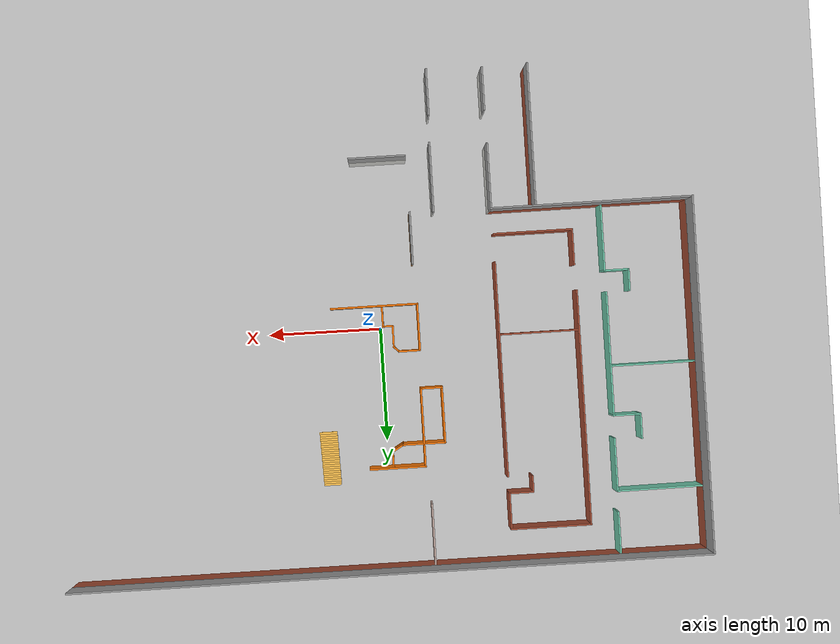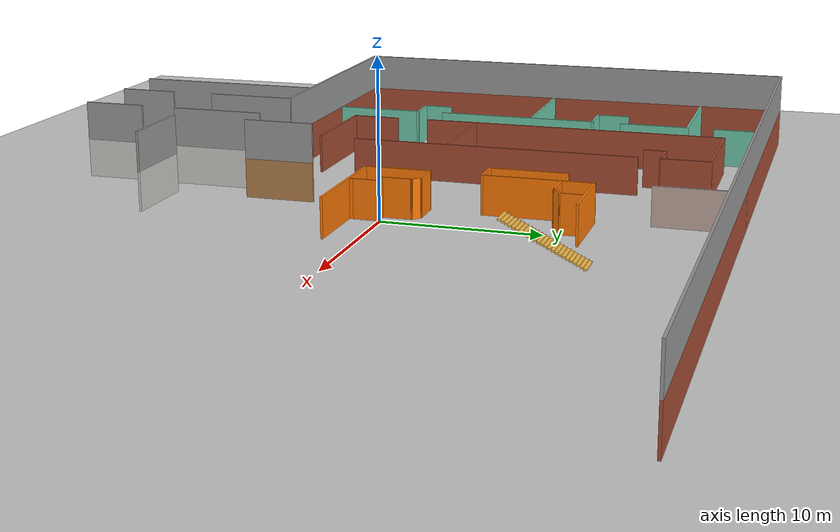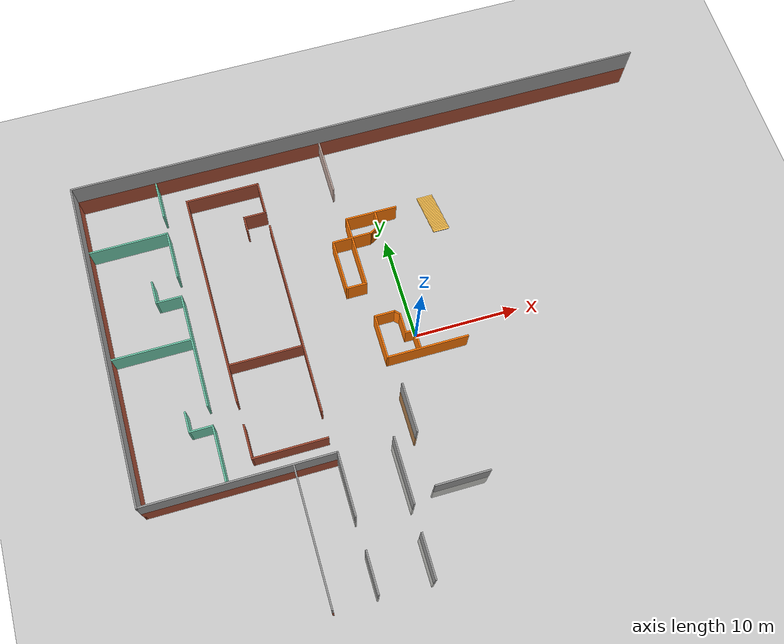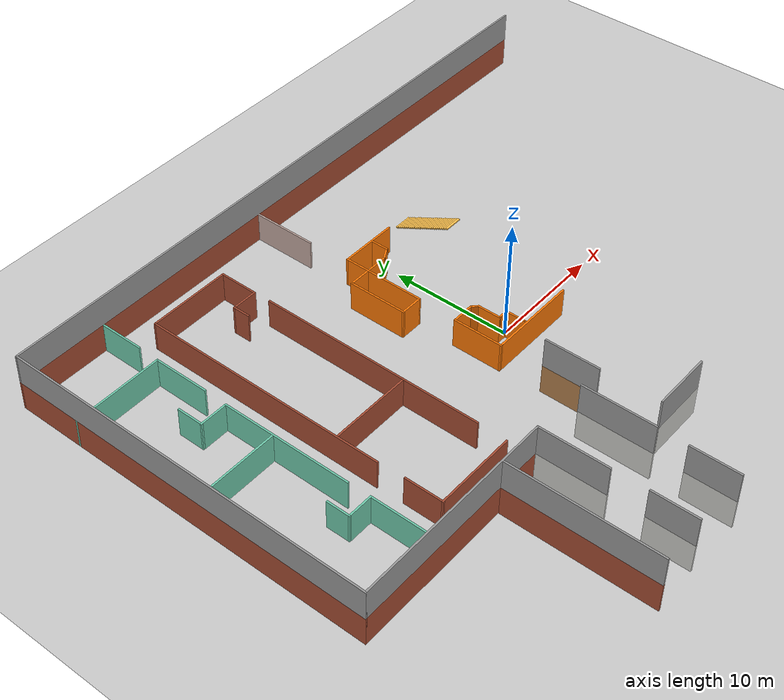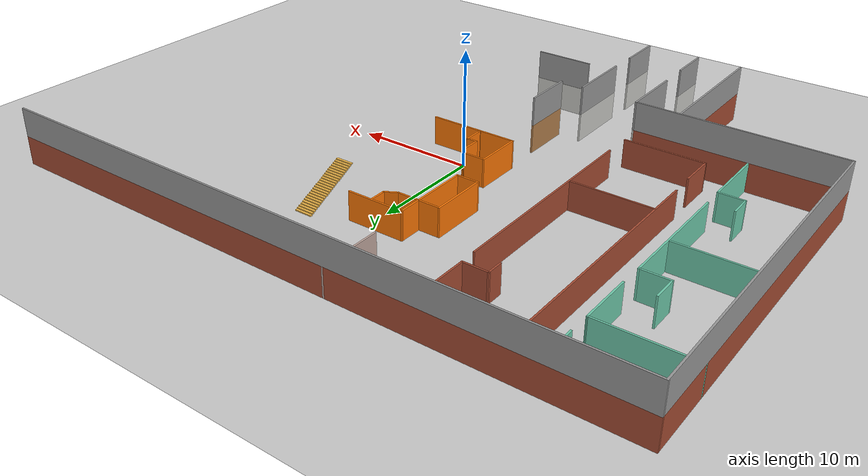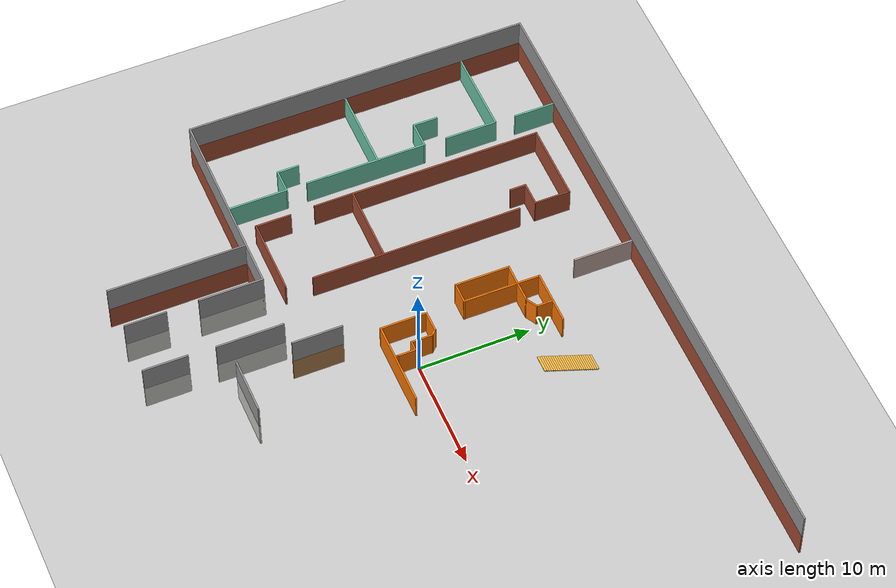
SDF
<sdf version="1.7">
 <world name="default">
  <model name="ground_plane">
   <static>1</static>
   <link name="link">
    <collision name="collision">
     <geometry><plane><normal>0 0 1</normal><size>100 100</size></plane></geometry>
     <surface><friction><ode><mu>100</mu><mu2>50</mu2></ode></friction></surface>
    </collision>
    <visual name="visual">
     <cast_shadows>0</cast_shadows>
     <geometry><plane><normal>0 0 1</normal><size>100 100</size></plane></geometry>
     <material>
      <script><uri>file://media/materials/scripts/gazebo.material</uri><name>Gazebo/Grey</name></script>
     </material>
    </visual>
   </link>
  </model>
  <model name="AKW_0">
   <pose>0.482897 -0.466564 0 0 -0 0</pose>
   <link name="Stairs_1">
    <visual name="Stairs_1_Visual_0">
     <pose>4.62116 14.1184 0.05 0 -0 0</pose>
     <geometry><box><size>1.557 0.2 0.1</size></box></geometry>
     <material>
      <script><uri>file://media/materials/scripts/gazebo.material</uri><name>Gazebo/Grey</name></script>
      <ambient>1 0.764706 0.305882 1</ambient>
     </material>
     <meta><layer>0</layer></meta>
    </visual>
    <collision name="Stairs_1_Collision_0">
     <geometry><box><size>1.557 0.2 0.1</size></box></geometry>
     <pose>4.62116 14.1184 0.05 0 -0 0</pose>
    </collision>
    <visual name="Stairs_1_Visual_1">
     <pose>4.62116 13.9184 0.15 0 -0 0</pose>
     <geometry><box><size>1.557 0.2 0.1</size></box></geometry>
     <material>
      <script><uri>file://media/materials/scripts/gazebo.material</uri><name>Gazebo/Grey</name></script>
      <ambient>1 0.764706 0.305882 1</ambient>
     </material>
     <meta><layer>0</layer></meta>
    </visual>
    <collision name="Stairs_1_Collision_1">
     <geometry><box><size>1.557 0.2 0.1</size></box></geometry>
     <pose>4.62116 13.9184 0.15 0 -0 0</pose>
    </collision>
    <visual name="Stairs_1_Visual_2">
     <pose>4.62116 13.7184 0.25 0 -0 0</pose>
     <geometry><box><size>1.557 0.2 0.1</size></box></geometry>
     <material>
      <script><uri>file://media/materials/scripts/gazebo.material</uri><name>Gazebo/Grey</name></script>
      <ambient>1 0.764706 0.305882 1</ambient>
     </material>
     <meta><layer>0</layer></meta>
    </visual>
    <collision name="Stairs_1_Collision_2">
     <geometry><box><size>1.557 0.2 0.1</size></box></geometry>
     <pose>4.62116 13.7184 0.25 0 -0 0</pose>
    </collision>
    <visual name="Stairs_1_Visual_3">
     <pose>4.62116 13.5184 0.35 0 -0 0</pose>
     <geometry><box><size>1.557 0.2 0.1</size></box></geometry>
     <material>
      <script><uri>file://media/materials/scripts/gazebo.material</uri><name>Gazebo/Grey</name></script>
      <ambient>1 0.764706 0.305882 1</ambient>
     </material>
     <meta><layer>0</layer></meta>
    </visual>
    <collision name="Stairs_1_Collision_3">
     <geometry><box><size>1.557 0.2 0.1</size></box></geometry>
     <pose>4.62116 13.5184 0.35 0 -0 0</pose>
    </collision>
    <visual name="Stairs_1_Visual_4">
     <pose>4.62116 13.3184 0.45 0 -0 0</pose>
     <geometry><box><size>1.557 0.2 0.1</size></box></geometry>
     <material>
      <script><uri>file://media/materials/scripts/gazebo.material</uri><name>Gazebo/Grey</name></script>
      <ambient>1 0.764706 0.305882 1</ambient>
     </material>
     <meta><layer>0</layer></meta>
    </visual>
    <collision name="Stairs_1_Collision_4">
     <geometry><box><size>1.557 0.2 0.1</size></box></geometry>
     <pose>4.62116 13.3184 0.45 0 -0 0</pose>
    </collision>
    <visual name="Stairs_1_Visual_5">
     <pose>4.62116 13.1184 0.55 0 -0 0</pose>
     <geometry><box><size>1.557 0.2 0.1</size></box></geometry>
     <material>
      <script><uri>file://media/materials/scripts/gazebo.material</uri><name>Gazebo/Grey</name></script>
      <ambient>1 0.764706 0.305882 1</ambient>
     </material>
     <meta><layer>0</layer></meta>
    </visual>
    <collision name="Stairs_1_Collision_5">
     <geometry><box><size>1.557 0.2 0.1</size></box></geometry>
     <pose>4.62116 13.1184 0.55 0 -0 0</pose>
    </collision>
    <visual name="Stairs_1_Visual_6">
     <pose>4.62116 12.9184 0.65 0 -0 0</pose>
     <geometry><box><size>1.557 0.2 0.1</size></box></geometry>
     <material>
      <script><uri>file://media/materials/scripts/gazebo.material</uri><name>Gazebo/Grey</name></script>
      <ambient>1 0.764706 0.305882 1</ambient>
     </material>
     <meta><layer>0</layer></meta>
    </visual>
    <collision name="Stairs_1_Collision_6">
     <geometry><box><size>1.557 0.2 0.1</size></box></geometry>
     <pose>4.62116 12.9184 0.65 0 -0 0</pose>
    </collision>
    <visual name="Stairs_1_Visual_7">
     <pose>4.62116 12.7184 0.75 0 -0 0</pose>
     <geometry><box><size>1.557 0.2 0.1</size></box></geometry>
     <material>
      <script><uri>file://media/materials/scripts/gazebo.material</uri><name>Gazebo/Grey</name></script>
      <ambient>1 0.764706 0.305882 1</ambient>
     </material>
     <meta><layer>0</layer></meta>
    </visual>
    <collision name="Stairs_1_Collision_7">
     <geometry><box><size>1.557 0.2 0.1</size></box></geometry>
     <pose>4.62116 12.7184 0.75 0 -0 0</pose>
    </collision>
    <visual name="Stairs_1_Visual_8">
     <pose>4.62116 12.5184 0.85 0 -0 0</pose>
     <geometry><box><size>1.557 0.2 0.1</size></box></geometry>
     <material>
      <script><uri>file://media/materials/scripts/gazebo.material</uri><name>Gazebo/Grey</name></script>
      <ambient>1 0.764706 0.305882 1</ambient>
     </material>
     <meta><layer>0</layer></meta>
    </visual>
    <collision name="Stairs_1_Collision_8">
     <geometry><box><size>1.557 0.2 0.1</size></box></geometry>
     <pose>4.62116 12.5184 0.85 0 -0 0</pose>
    </collision>
    <visual name="Stairs_1_Visual_9">
     <pose>4.62116 12.3184 0.95 0 -0 0</pose>
     <geometry><box><size>1.557 0.2 0.1</size></box></geometry>
     <material>
      <script><uri>file://media/materials/scripts/gazebo.material</uri><name>Gazebo/Grey</name></script>
      <ambient>1 0.764706 0.305882 1</ambient>
     </material>
     <meta><layer>0</layer></meta>
    </visual>
    <collision name="Stairs_1_Collision_9">
     <geometry><box><size>1.557 0.2 0.1</size></box></geometry>
     <pose>4.62116 12.3184 0.95 0 -0 0</pose>
    </collision>
    <visual name="Stairs_1_Visual_10">
     <pose>4.62116 12.1184 1.05 0 -0 0</pose>
     <geometry><box><size>1.557 0.2 0.1</size></box></geometry>
     <material>
      <script><uri>file://media/materials/scripts/gazebo.material</uri><name>Gazebo/Grey</name></script>
      <ambient>1 0.764706 0.305882 1</ambient>
     </material>
     <meta><layer>0</layer></meta>
    </visual>
    <collision name="Stairs_1_Collision_10">
     <geometry><box><size>1.557 0.2 0.1</size></box></geometry>
     <pose>4.62116 12.1184 1.05 0 -0 0</pose>
    </collision>
    <visual name="Stairs_1_Visual_11">
     <pose>4.62116 11.9184 1.15 0 -0 0</pose>
     <geometry><box><size>1.557 0.2 0.1</size></box></geometry>
     <material>
      <script><uri>file://media/materials/scripts/gazebo.material</uri><name>Gazebo/Grey</name></script>
      <ambient>1 0.764706 0.305882 1</ambient>
     </material>
     <meta><layer>0</layer></meta>
    </visual>
    <collision name="Stairs_1_Collision_11">
     <geometry><box><size>1.557 0.2 0.1</size></box></geometry>
     <pose>4.62116 11.9184 1.15 0 -0 0</pose>
    </collision>
    <visual name="Stairs_1_Visual_12">
     <pose>4.62116 11.7184 1.25 0 -0 0</pose>
     <geometry><box><size>1.557 0.2 0.1</size></box></geometry>
     <material>
      <script><uri>file://media/materials/scripts/gazebo.material</uri><name>Gazebo/Grey</name></script>
      <ambient>1 0.764706 0.305882 1</ambient>
     </material>
     <meta><layer>0</layer></meta>
    </visual>
    <collision name="Stairs_1_Collision_12">
     <geometry><box><size>1.557 0.2 0.1</size></box></geometry>
     <pose>4.62116 11.7184 1.25 0 -0 0</pose>
    </collision>
    <visual name="Stairs_1_Visual_13">
     <pose>4.62116 11.5184 1.35 0 -0 0</pose>
     <geometry><box><size>1.557 0.2 0.1</size></box></geometry>
     <material>
      <script><uri>file://media/materials/scripts/gazebo.material</uri><name>Gazebo/Grey</name></script>
      <ambient>1 0.764706 0.305882 1</ambient>
     </material>
     <meta><layer>0</layer></meta>
    </visual>
    <collision name="Stairs_1_Collision_13">
     <geometry><box><size>1.557 0.2 0.1</size></box></geometry>
     <pose>4.62116 11.5184 1.35 0 -0 0</pose>
    </collision>
    <visual name="Stairs_1_Visual_14">
     <pose>4.62116 11.3184 1.45 0 -0 0</pose>
     <geometry><box><size>1.557 0.2 0.1</size></box></geometry>
     <material>
      <script><uri>file://media/materials/scripts/gazebo.material</uri><name>Gazebo/Grey</name></script>
      <ambient>1 0.764706 0.305882 1</ambient>
     </material>
     <meta><layer>0</layer></meta>
    </visual>
    <collision name="Stairs_1_Collision_14">
     <geometry><box><size>1.557 0.2 0.1</size></box></geometry>
     <pose>4.62116 11.3184 1.45 0 -0 0</pose>
    </collision>
    <visual name="Stairs_1_Visual_15">
     <pose>4.62116 11.1184 1.55 0 -0 0</pose>
     <geometry><box><size>1.557 0.2 0.1</size></box></geometry>
     <material>
      <script><uri>file://media/materials/scripts/gazebo.material</uri><name>Gazebo/Grey</name></script>
      <ambient>1 0.764706 0.305882 1</ambient>
     </material>
     <meta><layer>0</layer></meta>
    </visual>
    <collision name="Stairs_1_Collision_15">
     <geometry><box><size>1.557 0.2 0.1</size></box></geometry>
     <pose>4.62116 11.1184 1.55 0 -0 0</pose>
    </collision>
    <visual name="Stairs_1_Visual_16">
     <pose>4.62116 10.9184 1.65 0 -0 0</pose>
     <geometry><box><size>1.557 0.2 0.1</size></box></geometry>
     <material>
      <script><uri>file://media/materials/scripts/gazebo.material</uri><name>Gazebo/Grey</name></script>
      <ambient>1 0.764706 0.305882 1</ambient>
     </material>
     <meta><layer>0</layer></meta>
    </visual>
    <collision name="Stairs_1_Collision_16">
     <geometry><box><size>1.557 0.2 0.1</size></box></geometry>
     <pose>4.62116 10.9184 1.65 0 -0 0</pose>
    </collision>
    <visual name="Stairs_1_Visual_17">
     <pose>4.62116 10.7184 1.75 0 -0 0</pose>
     <geometry><box><size>1.557 0.2 0.1</size></box></geometry>
     <material>
      <script><uri>file://media/materials/scripts/gazebo.material</uri><name>Gazebo/Grey</name></script>
      <ambient>1 0.764706 0.305882 1</ambient>
     </material>
     <meta><layer>0</layer></meta>
    </visual>
    <collision name="Stairs_1_Collision_17">
     <geometry><box><size>1.557 0.2 0.1</size></box></geometry>
     <pose>4.62116 10.7184 1.75 0 -0 0</pose>
    </collision>
    <visual name="Stairs_1_Visual_18">
     <pose>4.62116 10.5184 1.85 0 -0 0</pose>
     <geometry><box><size>1.557 0.2 0.1</size></box></geometry>
     <material>
      <script><uri>file://media/materials/scripts/gazebo.material</uri><name>Gazebo/Grey</name></script>
      <ambient>1 0.764706 0.305882 1</ambient>
     </material>
     <meta><layer>0</layer></meta>
    </visual>
    <collision name="Stairs_1_Collision_18">
     <geometry><box><size>1.557 0.2 0.1</size></box></geometry>
     <pose>4.62116 10.5184 1.85 0 -0 0</pose>
    </collision>
    <visual name="Stairs_1_Visual_19">
     <pose>4.62116 10.3184 1.95 0 -0 0</pose>
     <geometry><box><size>1.557 0.2 0.1</size></box></geometry>
     <material>
      <script><uri>file://media/materials/scripts/gazebo.material</uri><name>Gazebo/Grey</name></script>
      <ambient>1 0.764706 0.305882 1</ambient>
     </material>
     <meta><layer>0</layer></meta>
    </visual>
    <collision name="Stairs_1_Collision_19">
     <geometry><box><size>1.557 0.2 0.1</size></box></geometry>
     <pose>4.62116 10.3184 1.95 0 -0 0</pose>
    </collision>
    <visual name="Stairs_1_Visual_20">
     <pose>4.62116 10.1184 2.05 0 -0 0</pose>
     <geometry><box><size>1.557 0.2 0.1</size></box></geometry>
     <material>
      <script><uri>file://media/materials/scripts/gazebo.material</uri><name>Gazebo/Grey</name></script>
      <ambient>1 0.764706 0.305882 1</ambient>
     </material>
     <meta><layer>0</layer></meta>
    </visual>
    <collision name="Stairs_1_Collision_20">
     <geometry><box><size>1.557 0.2 0.1</size></box></geometry>
     <pose>4.62116 10.1184 2.05 0 -0 0</pose>
    </collision>
    <visual name="Stairs_1_Visual_21">
     <pose>4.62116 9.91837 2.15 0 -0 0</pose>
     <geometry><box><size>1.557 0.2 0.1</size></box></geometry>
     <material>
      <script><uri>file://media/materials/scripts/gazebo.material</uri><name>Gazebo/Grey</name></script>
      <ambient>1 0.764706 0.305882 1</ambient>
     </material>
     <meta><layer>0</layer></meta>
    </visual>
    <collision name="Stairs_1_Collision_21">
     <geometry><box><size>1.557 0.2 0.1</size></box></geometry>
     <pose>4.62116 9.91837 2.15 0 -0 0</pose>
    </collision>
    <visual name="Stairs_1_Visual_22">
     <pose>4.62116 9.71837 2.25 0 -0 0</pose>
     <geometry><box><size>1.557 0.2 0.1</size></box></geometry>
     <material>
      <script><uri>file://media/materials/scripts/gazebo.material</uri><name>Gazebo/Grey</name></script>
      <ambient>1 0.764706 0.305882 1</ambient>
     </material>
     <meta><layer>0</layer></meta>
    </visual>
    <collision name="Stairs_1_Collision_22">
     <geometry><box><size>1.557 0.2 0.1</size></box></geometry>
     <pose>4.62116 9.71837 2.25 0 -0 0</pose>
    </collision>
    <visual name="Stairs_1_Visual_23">
     <pose>4.62116 9.51837 2.35 0 -0 0</pose>
     <geometry><box><size>1.557 0.2 0.1</size></box></geometry>
     <material>
      <script><uri>file://media/materials/scripts/gazebo.material</uri><name>Gazebo/Grey</name></script>
      <ambient>1 0.764706 0.305882 1</ambient>
     </material>
     <meta><layer>0</layer></meta>
    </visual>
    <collision name="Stairs_1_Collision_23">
     <geometry><box><size>1.557 0.2 0.1</size></box></geometry>
     <pose>4.62116 9.51837 2.35 0 -0 0</pose>
    </collision>
    <visual name="Stairs_1_Visual_24">
     <pose>4.62116 9.31837 2.45 0 -0 0</pose>
     <geometry><box><size>1.557 0.2 0.1</size></box></geometry>
     <material>
      <script><uri>file://media/materials/scripts/gazebo.material</uri><name>Gazebo/Grey</name></script>
      <ambient>1 0.764706 0.305882 1</ambient>
     </material>
     <meta><layer>0</layer></meta>
    </visual>
    <collision name="Stairs_1_Collision_24">
     <geometry><box><size>1.557 0.2 0.1</size></box></geometry>
     <pose>4.62116 9.31837 2.45 0 -0 0</pose>
    </collision>
   </link>
   <link name="Wall_108">
    <collision name="Wall_108_Collision">
     <geometry><box><size>5 0.15 2.5</size></box></geometry>
     <pose>0 0 1.25 0 -0 0</pose>
    </collision>
    <visual name="Wall_108_Visual">
     <pose>0 0 1.25 0 -0 0</pose>
     <geometry><box><size>5 0.15 2.5</size></box></geometry>
     <material>
      <script><uri>file://media/materials/scripts/gazebo.material</uri><name>Gazebo/Grey</name></script>
      <ambient>0.996078 0.47451 0.0196078 1</ambient>
     </material>
     <meta><layer>0</layer></meta>
    </visual>
    <pose>-1.29696 12.7755 0 0 -0 3.14159</pose>
   </link>
   <link name="Wall_109">
    <collision name="Wall_109_Collision">
     <geometry><box><size>7 0.15 2.5</size></box></geometry>
     <pose>0 0 1.25 0 -0 0</pose>
    </collision>
    <visual name="Wall_109_Visual">
     <pose>0 0 1.25 0 -0 0</pose>
     <geometry><box><size>7 0.15 2.5</size></box></geometry>
     <material>
      <script><uri>file://media/materials/scripts/gazebo.material</uri><name>Gazebo/Grey</name></script>
      <ambient>0.996078 0.47451 0.0196078 1</ambient>
     </material>
     <meta><layer>0</layer></meta>
    </visual>
    <pose>-3.72196 9.35053 0 0 -0 -1.5708</pose>
   </link>
   <link name="Wall_110">
    <collision name="Wall_110_Collision">
     <geometry><box><size>2 0.15 2.5</size></box></geometry>
     <pose>0 0 1.25 0 -0 0</pose>
    </collision>
    <visual name="Wall_110_Visual">
     <pose>0 0 1.25 0 -0 0</pose>
     <geometry><box><size>2 0.15 2.5</size></box></geometry>
     <material>
      <script><uri>file://media/materials/scripts/gazebo.material</uri><name>Gazebo/Grey</name></script>
      <ambient>0.996078 0.47451 0.0196078 1</ambient>
     </material>
     <meta><layer>0</layer></meta>
    </visual>
    <pose>-4.64696 5.92553 0 0 -0 3.14159</pose>
   </link>
   <link name="Wall_111">
    <collision name="Wall_111_Collision">
     <geometry><box><size>5 0.15 2.5</size></box></geometry>
     <pose>0 0 1.25 0 -0 0</pose>
    </collision>
    <visual name="Wall_111_Visual">
     <pose>0 0 1.25 0 -0 0</pose>
     <geometry><box><size>5 0.15 2.5</size></box></geometry>
     <material>
      <script><uri>file://media/materials/scripts/gazebo.material</uri><name>Gazebo/Grey</name></script>
      <ambient>0.996078 0.47451 0.0196078 1</ambient>
     </material>
     <meta><layer>0</layer></meta>
    </visual>
    <pose>-5.57196 8.35053 0 0 -0 1.5708</pose>
   </link>
   <link name="Wall_112">
    <collision name="Wall_112_Collision">
     <geometry><box><size>2 0.15 2.5</size></box></geometry>
     <pose>0 0 1.25 0 -0 0</pose>
    </collision>
    <visual name="Wall_112_Visual">
     <pose>0 0 1.25 0 -0 0</pose>
     <geometry><box><size>2 0.15 2.5</size></box></geometry>
     <material>
      <script><uri>file://media/materials/scripts/gazebo.material</uri><name>Gazebo/Grey</name></script>
      <ambient>0.996078 0.47451 0.0196078 1</ambient>
     </material>
     <meta><layer>0</layer></meta>
    </visual>
    <pose>-4.64696 10.7755 0 0 -0 0</pose>
   </link>
   <link name="Wall_114">
    <collision name="Wall_114_Collision">
     <geometry><box><size>2 0.15 2.5</size></box></geometry>
     <pose>0 0 1.25 0 -0 0</pose>
    </collision>
    <visual name="Wall_114_Visual">
     <pose>0 0 1.25 0 -0 0</pose>
     <geometry><box><size>2 0.15 2.5</size></box></geometry>
     <material>
      <script><uri>file://media/materials/scripts/gazebo.material</uri><name>Gazebo/Grey</name></script>
      <ambient>0.996078 0.47451 0.0196078 1</ambient>
     </material>
     <meta><layer>0</layer></meta>
    </visual>
    <pose>-2.79696 10.7755 0 0 -0 0</pose>
   </link>
   <link name="Wall_115">
    <collision name="Wall_115_Collision">
     <geometry><box><size>1.25 0.15 2.5</size></box></geometry>
     <pose>0 0 1.25 0 -0 0</pose>
    </collision>
    <visual name="Wall_115_Visual">
     <pose>0 0 1.25 0 -0 0</pose>
     <geometry><box><size>1.25 0.15 2.5</size></box></geometry>
     <material>
      <script><uri>file://media/materials/scripts/gazebo.material</uri><name>Gazebo/Grey</name></script>
      <ambient>0.996078 0.47451 0.0196078 1</ambient>
     </material>
     <meta><layer>0</layer></meta>
    </visual>
    <pose>-1.39565 11.0505 0 0 -0 0.523599</pose>
   </link>
   <link name="Wall_116">
    <collision name="Wall_116_Collision">
     <geometry><box><size>1.5 0.15 2.5</size></box></geometry>
     <pose>0 0 1.25 0 -0 0</pose>
    </collision>
    <visual name="Wall_116_Visual">
     <pose>0 0 1.25 0 -0 0</pose>
     <geometry><box><size>1.5 0.15 2.5</size></box></geometry>
     <material>
      <script><uri>file://media/materials/scripts/gazebo.material</uri><name>Gazebo/Grey</name></script>
      <ambient>0.996078 0.47451 0.0196078 1</ambient>
     </material>
     <meta><layer>0</layer></meta>
    </visual>
    <pose>-0.919332 12.0005 0 0 -0 1.5708</pose>
   </link>
   <link name="Wall_119">
    <collision name="Wall_119_Collision">
     <geometry><box><size>7.75 0.15 2.5</size></box></geometry>
     <pose>0 0 1.25 0 -0 0</pose>
    </collision>
    <visual name="Wall_119_Visual">
     <pose>0 0 1.25 0 -0 0</pose>
     <geometry><box><size>7.75 0.15 2.5</size></box></geometry>
     <material>
      <script><uri>file://media/materials/scripts/gazebo.material</uri><name>Gazebo/Grey</name></script>
      <ambient>0.996078 0.47451 0.0196078 1</ambient>
     </material>
     <meta><layer>0</layer></meta>
    </visual>
    <pose>-0.053314 -1.5472 0 0 -0 3.14159</pose>
   </link>
   <link name="Wall_12">
    <collision name="Wall_12_Collision">
     <geometry><box><size>19 0.15 2.5</size></box></geometry>
     <pose>0 0 1.25 0 -0 0</pose>
    </collision>
    <visual name="Wall_12_Visual">
     <pose>0 0 1.25 0 -0 0</pose>
     <geometry><box><size>19 0.15 2.5</size></box></geometry>
     <material>
      <script><uri>file://media/materials/scripts/gazebo.material</uri><name>Gazebo/Bricks</name></script>
      <ambient>1 1 1 1</ambient>
     </material>
     <meta><layer>0</layer></meta>
    </visual>
    <pose>-10.8959 4.66757 0 0 -0 1.5708</pose>
   </link>
   <link name="Wall_120">
    <collision name="Wall_120_Collision">
     <geometry><box><size>4.25 0.15 2.5</size></box></geometry>
     <pose>0 0 1.25 0 -0 0</pose>
    </collision>
    <visual name="Wall_120_Visual">
     <pose>0 0 1.25 0 -0 0</pose>
     <geometry><box><size>4.25 0.15 2.5</size></box></geometry>
     <material>
      <script><uri>file://media/materials/scripts/gazebo.material</uri><name>Gazebo/Grey</name></script>
      <ambient>0.996078 0.47451 0.0196078 1</ambient>
     </material>
     <meta><layer>0</layer></meta>
    </visual>
    <pose>-3.85331 0.502804 0 0 -0 1.5708</pose>
   </link>
   <link name="Wall_121">
    <collision name="Wall_121_Collision">
     <geometry><box><size>2 0.15 2.5</size></box></geometry>
     <pose>0 0 1.25 0 -0 0</pose>
    </collision>
    <visual name="Wall_121_Visual">
     <pose>0 0 1.25 0 -0 0</pose>
     <geometry><box><size>2 0.15 2.5</size></box></geometry>
     <material>
      <script><uri>file://media/materials/scripts/gazebo.material</uri><name>Gazebo/Grey</name></script>
      <ambient>0.996078 0.47451 0.0196078 1</ambient>
     </material>
     <meta><layer>0</layer></meta>
    </visual>
    <pose>-2.92831 2.5528 0 0 -0 0</pose>
   </link>
   <link name="Wall_122">
    <collision name="Wall_122_Collision">
     <geometry><box><size>0.75 0.15 2.5</size></box></geometry>
     <pose>0 0 1.25 0 -0 0</pose>
    </collision>
    <visual name="Wall_122_Visual">
     <pose>0 0 1.25 0 -0 0</pose>
     <geometry><box><size>0.75 0.15 2.5</size></box></geometry>
     <material>
      <script><uri>file://media/materials/scripts/gazebo.material</uri><name>Gazebo/Grey</name></script>
      <ambient>0.996078 0.47451 0.0196078 1</ambient>
     </material>
     <meta><layer>0</layer></meta>
    </visual>
    <pose>-1.79118 2.34067 0 0 -0 -0.785398</pose>
   </link>
   <link name="Wall_123">
    <collision name="Wall_123_Collision">
     <geometry><box><size>2 0.15 2.5</size></box></geometry>
     <pose>0 0 1.25 0 -0 0</pose>
    </collision>
    <visual name="Wall_123_Visual">
     <pose>0 0 1.25 0 -0 0</pose>
     <geometry><box><size>2 0.15 2.5</size></box></geometry>
     <material>
      <script><uri>file://media/materials/scripts/gazebo.material</uri><name>Gazebo/Grey</name></script>
      <ambient>0.996078 0.47451 0.0196078 1</ambient>
     </material>
     <meta><layer>0</layer></meta>
    </visual>
    <pose>-1.57905 1.20354 0 0 -0 -1.5708</pose>
   </link>
   <link name="Wall_124">
    <collision name="Wall_124_Collision">
     <geometry><box><size>1 0.15 2.5</size></box></geometry>
     <pose>0 0 1.25 0 -0 0</pose>
    </collision>
    <visual name="Wall_124_Visual">
     <pose>0 0 1.25 0 -0 0</pose>
     <geometry><box><size>1 0.15 2.5</size></box></geometry>
     <material>
      <script><uri>file://media/materials/scripts/gazebo.material</uri><name>Gazebo/Grey</name></script>
      <ambient>0.996078 0.47451 0.0196078 1</ambient>
     </material>
     <meta><layer>0</layer></meta>
    </visual>
    <pose>-1.15405 0.27854 0 0 -0 0</pose>
   </link>
   <link name="Wall_125">
    <collision name="Wall_125_Collision">
     <geometry><box><size>1.75 0.15 2.5</size></box></geometry>
     <pose>0 0 1.25 0 -0 0</pose>
    </collision>
    <visual name="Wall_125_Visual">
     <pose>0 0 1.25 0 -0 0</pose>
     <geometry><box><size>1.75 0.15 2.5</size></box></geometry>
     <material>
      <script><uri>file://media/materials/scripts/gazebo.material</uri><name>Gazebo/Grey</name></script>
      <ambient>0.996078 0.47451 0.0196078 1</ambient>
     </material>
     <meta><layer>0</layer></meta>
    </visual>
    <pose>-0.729049 -0.52146 0 0 -0 -1.5708</pose>
   </link>
   <link name="Wall_126">
    <collision name="Wall_126_Collision">
     <geometry><box><size>0.25 0.15 2.5</size></box></geometry>
     <pose>0 0 1.25 0 -0 0</pose>
    </collision>
    <visual name="Wall_126_Visual">
     <pose>0 0 1.25 0 -0 0</pose>
     <geometry><box><size>0.25 0.15 2.5</size></box></geometry>
     <material>
      <script><uri>file://media/materials/scripts/gazebo.material</uri><name>Gazebo/Grey</name></script>
      <ambient>0.996078 0.47451 0.0196078 1</ambient>
     </material>
     <meta><layer>0</layer></meta>
    </visual>
    <pose>-0.729049 -1.37146 0 0 -0 -1.5708</pose>
   </link>
   <link name="Wall_14">
    <collision name="Wall_14_Collision">
     <geometry><box><size>7 0.15 2.5</size></box></geometry>
     <pose>0 0 1.25 0 -0 0</pose>
    </collision>
    <visual name="Wall_14_Visual">
     <pose>0 0 1.25 0 -0 0</pose>
     <geometry><box><size>7 0.15 2.5</size></box></geometry>
     <material>
      <script><uri>file://media/materials/scripts/gazebo.material</uri><name>Gazebo/Bricks</name></script>
      <ambient>1 1 1 1</ambient>
     </material>
     <meta><layer>0</layer></meta>
    </visual>
    <pose>-14.4147 -7.24339 0 0 -0 3.14159</pose>
   </link>
   <link name="Wall_15">
    <collision name="Wall_15_Collision">
     <geometry><box><size>3.25 0.15 2.5</size></box></geometry>
     <pose>0 0 1.25 0 -0 0</pose>
    </collision>
    <visual name="Wall_15_Visual">
     <pose>0 0 1.25 0 -0 0</pose>
     <geometry><box><size>3.25 0.15 2.5</size></box></geometry>
     <material>
      <script><uri>file://media/materials/scripts/gazebo.material</uri><name>Gazebo/Bricks</name></script>
      <ambient>1 1 1 1</ambient>
     </material>
     <meta><layer>0</layer></meta>
    </visual>
    <pose>-17.8397 -5.69339 0 0 -0 1.5708</pose>
   </link>
   <link name="Wall_17">
    <collision name="Wall_17_Collision">
     <geometry><box><size>20.75 0.15 2.5</size></box></geometry>
     <pose>0 0 1.25 0 -0 0</pose>
    </collision>
    <visual name="Wall_17_Visual">
     <pose>0 0 1.25 0 -0 0</pose>
     <geometry><box><size>20.75 0.15 2.5</size></box></geometry>
     <material>
      <script><uri>file://media/materials/scripts/gazebo.material</uri><name>Gazebo/Bricks</name></script>
      <ambient>1 1 1 1</ambient>
     </material>
     <meta><layer>0</layer></meta>
    </visual>
    <pose>-17.9316 8.45068 0 0 -0 1.5708</pose>
   </link>
   <link name="Wall_18">
    <collision name="Wall_18_Collision">
     <geometry><box><size>7.13756 0.15 2.5</size></box></geometry>
     <pose>0 0 1.25 0 -0 0</pose>
    </collision>
    <visual name="Wall_18_Visual">
     <pose>0 0 1.25 0 -0 0</pose>
     <geometry><box><size>7.13756 0.15 2.5</size></box></geometry>
     <material>
      <script><uri>file://media/materials/scripts/gazebo.material</uri><name>Gazebo/Bricks</name></script>
      <ambient>1 1 1 1</ambient>
     </material>
     <meta><layer>0</layer></meta>
    </visual>
    <pose>-14.4379 18.7507 0 0 -0 0</pose>
   </link>
   <link name="Wall_19">
    <collision name="Wall_19_Collision">
     <geometry><box><size>3.2973 0.15 2.5</size></box></geometry>
     <pose>0 0 1.25 0 -0 0</pose>
    </collision>
    <visual name="Wall_19_Visual">
     <pose>0 0 1.25 0 -0 0</pose>
     <geometry><box><size>3.2973 0.15 2.5</size></box></geometry>
     <material>
      <script><uri>file://media/materials/scripts/gazebo.material</uri><name>Gazebo/Bricks</name></script>
      <ambient>1 1 1 1</ambient>
     </material>
     <meta><layer>0</layer></meta>
    </visual>
    <pose>-10.9368 17.177 0 0 -0 -1.57268</pose>
   </link>
   <link name="Wall_2">
    <collision name="Wall_2_Collision">
     <geometry><box><size>56 0.15 2.5</size></box></geometry>
     <pose>0 0 1.25 0 -0 0</pose>
    </collision>
    <visual name="Wall_2_Visual">
     <pose>0 0 1.25 0 -0 0</pose>
     <geometry><box><size>56 0.15 2.5</size></box></geometry>
     <material>
      <script><uri>file://media/materials/scripts/gazebo.material</uri><name>Gazebo/Bricks</name></script>
      <ambient>1 1 1 1</ambient>
     </material>
     <meta><layer>0</layer></meta>
    </visual>
    <pose>-0.068349 21.5525 0 0 -0 3.14159</pose>
   </link>
   <link name="Wall_21">
    <collision name="Wall_21_Collision">
     <geometry><box><size>7 0.15 2.5</size></box></geometry>
     <pose>0 0 1.25 0 -0 0</pose>
    </collision>
    <visual name="Wall_21_Visual">
     <pose>0 0 1.25 0 -0 0</pose>
     <geometry><box><size>7 0.15 2.5</size></box></geometry>
     <material>
      <script><uri>file://media/materials/scripts/gazebo.material</uri><name>Gazebo/Bricks</name></script>
      <ambient>1 1 1 1</ambient>
     </material>
     <meta><layer>0</layer></meta>
    </visual>
    <pose>-14.4748 1.61674 0 0 -0 0</pose>
   </link>
   <link name="Wall_225">
    <collision name="Wall_225_Collision">
     <geometry><box><size>56 0.15 2.5</size></box></geometry>
     <pose>0 0 1.25 0 -0 0</pose>
    </collision>
    <visual name="Wall_225_Visual">
     <pose>0 0 1.25 0 -0 0</pose>
     <geometry><box><size>56 0.15 2.5</size></box></geometry>
     <material>
      <script><uri>file://media/materials/scripts/gazebo.material</uri><name>Gazebo/Grey</name></script>
      <ambient>1 1 1 1</ambient>
     </material>
     <meta><layer>1</layer></meta>
    </visual>
    <pose>-0.068349 21.5525 2.5 0 -0 3.14159</pose>
   </link>
   <link name="Wall_226">
    <collision name="Wall_226_Collision">
     <geometry><box><size>31 0.15 2.5</size></box></geometry>
     <pose>0 0 1.25 0 -0 0</pose>
    </collision>
    <visual name="Wall_226_Visual">
     <pose>0 0 1.25 0 -0 0</pose>
     <geometry><box><size>31 0.15 2.5</size></box></geometry>
     <material>
      <script><uri>file://media/materials/scripts/gazebo.material</uri><name>Gazebo/Grey</name></script>
      <ambient>1 1 1 1</ambient>
     </material>
     <meta><layer>1</layer></meta>
    </visual>
    <pose>-27.9933 6.1275 2.5 0 -0 -1.5708</pose>
   </link>
   <link name="Wall_227">
    <collision name="Wall_227_Collision">
     <geometry><box><size>17.5 0.15 2.5</size></box></geometry>
     <pose>0 0 1.25 0 -0 0</pose>
    </collision>
    <visual name="Wall_227_Visual">
     <pose>0 0 1.25 0 -0 0</pose>
     <geometry><box><size>17.5 0.15 2.5</size></box></geometry>
     <material>
      <script><uri>file://media/materials/scripts/gazebo.material</uri><name>Gazebo/Grey</name></script>
      <ambient>1 1 1 1</ambient>
     </material>
     <meta><layer>1</layer></meta>
    </visual>
    <pose>-19.3183 -9.2975 2.5 0 -0 0</pose>
   </link>
   <link name="Wall_228">
    <collision name="Wall_228_Collision">
     <geometry><box><size>5.75 0.15 2.5</size></box></geometry>
     <pose>0 0 1.25 0 -0 0</pose>
    </collision>
    <visual name="Wall_228_Visual">
     <pose>0 0 1.25 0 -0 0</pose>
     <geometry><box><size>5.75 0.15 2.5</size></box></geometry>
     <material>
      <script><uri>file://media/materials/scripts/gazebo.material</uri><name>Gazebo/Grey</name></script>
      <ambient>1 1 1 1</ambient>
     </material>
     <meta><layer>1</layer></meta>
    </visual>
    <pose>-10.6433 -12.0975 2.5 0 -0 -1.5708</pose>
   </link>
   <link name="Wall_229">
    <collision name="Wall_229_Collision">
     <geometry><box><size>12.25 0.15 2.5</size></box></geometry>
     <pose>0 0 1.25 0 -0 0</pose>
    </collision>
    <visual name="Wall_229_Visual">
     <pose>0 0 1.25 0 -0 0</pose>
     <geometry><box><size>12.25 0.15 2.5</size></box></geometry>
     <material>
      <script><uri>file://media/materials/scripts/gazebo.material</uri><name>Gazebo/Grey</name></script>
      <ambient>1 1 1 1</ambient>
     </material>
     <meta><layer>1</layer></meta>
    </visual>
    <pose>-14.4933 -15.4975 2.5 0 -0 -1.5708</pose>
   </link>
   <link name="Wall_23">
    <collision name="Wall_23_Collision">
     <geometry><box><size>2.25 0.15 2.5</size></box></geometry>
     <pose>0 0 1.25 0 -0 0</pose>
    </collision>
    <visual name="Wall_23_Visual">
     <pose>0 0 1.25 0 -0 0</pose>
     <geometry><box><size>2.25 0.15 2.5</size></box></geometry>
     <material>
      <script><uri>file://media/materials/scripts/gazebo.material</uri><name>Gazebo/Bricks</name></script>
      <ambient>1 1 1 1</ambient>
     </material>
     <meta><layer>0</layer></meta>
    </visual>
    <pose>-11.9898 15.5857 0 0 -0 0</pose>
   </link>
   <link name="Wall_25">
    <collision name="Wall_25_Collision">
     <geometry><box><size>1.5 0.15 2.5</size></box></geometry>
     <pose>0 0 1.25 0 -0 0</pose>
    </collision>
    <visual name="Wall_25_Visual">
     <pose>0 0 1.25 0 -0 0</pose>
     <geometry><box><size>1.5 0.15 2.5</size></box></geometry>
     <material>
      <script><uri>file://media/materials/scripts/gazebo.material</uri><name>Gazebo/Bricks</name></script>
      <ambient>1 1 1 1</ambient>
     </material>
     <meta><layer>0</layer></meta>
    </visual>
    <pose>-13.0398 14.9107 0 0 -0 -1.5708</pose>
   </link>
   <link name="Wall_255">
    <collision name="Wall_255_Collision">
     <geometry><box><size>3.75 0.15 2.5</size></box></geometry>
     <pose>0 0 1.25 0 -0 0</pose>
    </collision>
    <visual name="Wall_255_Visual">
     <pose>0 0 1.25 0 -0 0</pose>
     <geometry><box><size>3.75 0.15 2.5</size></box></geometry>
     <material>
      <script><uri>file://media/materials/scripts/gazebo.material</uri><name>Gazebo/Grey</name></script>
      <ambient>1 1 1 1</ambient>
     </material>
     <meta><layer>1</layer></meta>
    </visual>
    <pose>-10.5861 -19.6441 2.5 0 -0 -1.5708</pose>
   </link>
   <link name="Wall_256">
    <collision name="Wall_256_Collision">
     <geometry><box><size>6 0.15 2.5</size></box></geometry>
     <pose>0 0 1.25 0 -0 0</pose>
    </collision>
    <visual name="Wall_256_Visual">
     <pose>0 0 1.25 0 -0 0</pose>
     <geometry><box><size>6 0.15 2.5</size></box></geometry>
     <material>
      <script><uri>file://media/materials/scripts/gazebo.material</uri><name>Gazebo/Grey</name></script>
      <ambient>1 1 1 1</ambient>
     </material>
     <meta><layer>1</layer></meta>
    </visual>
    <pose>-5.68364 -12.2987 2.5 0 -0 -1.5708</pose>
   </link>
   <link name="Wall_257">
    <collision name="Wall_257_Collision">
     <geometry><box><size>4 0.15 2.5</size></box></geometry>
     <pose>0 0 1.25 0 -0 0</pose>
    </collision>
    <visual name="Wall_257_Visual">
     <pose>0 0 1.25 0 -0 0</pose>
     <geometry><box><size>4 0.15 2.5</size></box></geometry>
     <material>
      <script><uri>file://media/materials/scripts/gazebo.material</uri><name>Gazebo/Grey</name></script>
      <ambient>1 1 1 1</ambient>
     </material>
     <meta><layer>1</layer></meta>
    </visual>
    <pose>-5.78151 -19.6583 2.5 0 -0 -1.5708</pose>
   </link>
   <link name="Wall_258">
    <collision name="Wall_258_Collision">
     <geometry><box><size>5 0.15 2.5</size></box></geometry>
     <pose>0 0 1.25 0 -0 0</pose>
    </collision>
    <visual name="Wall_258_Visual">
     <pose>0 0 1.25 0 -0 0</pose>
     <geometry><box><size>5 0.15 2.5</size></box></geometry>
     <material>
      <script><uri>file://media/materials/scripts/gazebo.material</uri><name>Gazebo/Grey</name></script>
      <ambient>1 1 1 1</ambient>
     </material>
     <meta><layer>1</layer></meta>
    </visual>
    <pose>-1.09055 -14.2885 2.5 0 -0 0</pose>
   </link>
   <link name="Wall_27">
    <collision name="Wall_27_Collision">
     <geometry><box><size>6 0.15 2.5</size></box></geometry>
     <pose>0 0 1.25 0 -0 0</pose>
    </collision>
    <visual name="Wall_27_Visual">
     <pose>0 0 1.25 0 -0 0</pose>
     <geometry><box><size>6 0.15 2.5</size></box></geometry>
     <material>
      <script><uri>file://media/materials/scripts/gazebo.material</uri><name>Gazebo/Grey</name></script>
      <ambient>0.435294 0.796078 0.67451 1</ambient>
     </material>
     <meta><layer>0</layer></meta>
    </visual>
    <pose>-20.4803 -6.36244 0 0 -0 1.5708</pose>
   </link>
   <link name="Wall_274">
    <collision name="Wall_274_Collision">
     <geometry><box><size>4.5 0.15 2.5</size></box></geometry>
     <pose>0 0 1.25 0 -0 0</pose>
    </collision>
    <visual name="Wall_274_Visual">
     <pose>0 0 1.25 0 -0 0</pose>
     <geometry><box><size>4.5 0.15 2.5</size></box></geometry>
     <material>
      <script><uri>file://media/materials/scripts/gazebo.material</uri><name>Gazebo/Grey</name></script>
      <ambient>1 1 1 1</ambient>
     </material>
     <meta><layer>1</layer></meta>
    </visual>
    <pose>-3.62897 -7.20089 2.5 0 -0 1.5708</pose>
   </link>
   <link name="Wall_28">
    <collision name="Wall_28_Collision">
     <geometry><box><size>2.25 0.15 2.5</size></box></geometry>
     <pose>0 0 1.25 0 -0 0</pose>
    </collision>
    <visual name="Wall_28_Visual">
     <pose>0 0 1.25 0 -0 0</pose>
     <geometry><box><size>2.25 0.15 2.5</size></box></geometry>
     <material>
      <script><uri>file://media/materials/scripts/gazebo.material</uri><name>Gazebo/Grey</name></script>
      <ambient>0.435294 0.796078 0.67451 1</ambient>
     </material>
     <meta><layer>0</layer></meta>
    </visual>
    <pose>-21.5303 -3.43744 0 0 -0 3.14159</pose>
   </link>
   <link name="Wall_29">
    <collision name="Wall_29_Collision">
     <geometry><box><size>2 0.15 2.5</size></box></geometry>
     <pose>0 0 1.25 0 -0 0</pose>
    </collision>
    <visual name="Wall_29_Visual">
     <pose>0 0 1.25 0 -0 0</pose>
     <geometry><box><size>2 0.15 2.5</size></box></geometry>
     <material>
      <script><uri>file://media/materials/scripts/gazebo.material</uri><name>Gazebo/Grey</name></script>
      <ambient>0.435294 0.796078 0.67451 1</ambient>
     </material>
     <meta><layer>0</layer></meta>
    </visual>
    <pose>-22.5803 -2.51244 0 0 -0 1.5708</pose>
   </link>
   <link name="Wall_3">
    <collision name="Wall_3_Collision">
     <geometry><box><size>31 0.15 2.5</size></box></geometry>
     <pose>0 0 1.25 0 -0 0</pose>
    </collision>
    <visual name="Wall_3_Visual">
     <pose>0 0 1.25 0 -0 0</pose>
     <geometry><box><size>31 0.15 2.5</size></box></geometry>
     <material>
      <script><uri>file://media/materials/scripts/gazebo.material</uri><name>Gazebo/Bricks</name></script>
      <ambient>1 1 1 1</ambient>
     </material>
     <meta><layer>0</layer></meta>
    </visual>
    <pose>-27.9933 6.1275 0 0 -0 -1.5708</pose>
   </link>
   <link name="Wall_31">
    <collision name="Wall_31_Collision">
     <geometry><box><size>11 0.15 2.5</size></box></geometry>
     <pose>0 0 1.25 0 -0 0</pose>
    </collision>
    <visual name="Wall_31_Visual">
     <pose>0 0 1.25 0 -0 0</pose>
     <geometry><box><size>11 0.15 2.5</size></box></geometry>
     <material>
      <script><uri>file://media/materials/scripts/gazebo.material</uri><name>Gazebo/Grey</name></script>
      <ambient>0.435294 0.796078 0.67451 1</ambient>
     </material>
     <meta><layer>0</layer></meta>
    </visual>
    <pose>-20.5119 3.90334 0 0 -0 1.5708</pose>
   </link>
   <link name="Wall_32">
    <collision name="Wall_32_Collision">
     <geometry><box><size>2.5 0.15 2.5</size></box></geometry>
     <pose>0 0 1.25 0 -0 0</pose>
    </collision>
    <visual name="Wall_32_Visual">
     <pose>0 0 1.25 0 -0 0</pose>
     <geometry><box><size>2.5 0.15 2.5</size></box></geometry>
     <material>
      <script><uri>file://media/materials/scripts/gazebo.material</uri><name>Gazebo/Grey</name></script>
      <ambient>0.435294 0.796078 0.67451 1</ambient>
     </material>
     <meta><layer>0</layer></meta>
    </visual>
    <pose>-21.6869 9.32834 0 0 -0 3.14159</pose>
   </link>
   <link name="Wall_33">
    <collision name="Wall_33_Collision">
     <geometry><box><size>2.25 0.15 2.5</size></box></geometry>
     <pose>0 0 1.25 0 -0 0</pose>
    </collision>
    <visual name="Wall_33_Visual">
     <pose>0 0 1.25 0 -0 0</pose>
     <geometry><box><size>2.25 0.15 2.5</size></box></geometry>
     <material>
      <script><uri>file://media/materials/scripts/gazebo.material</uri><name>Gazebo/Grey</name></script>
      <ambient>0.435294 0.796078 0.67451 1</ambient>
     </material>
     <meta><layer>0</layer></meta>
    </visual>
    <pose>-22.8619 10.3783 0 0 -0 1.5708</pose>
   </link>
   <link name="Wall_35">
    <collision name="Wall_35_Collision">
     <geometry><box><size>7.66367 0.15 2.5</size></box></geometry>
     <pose>0 0 1.25 0 -0 0</pose>
    </collision>
    <visual name="Wall_35_Visual">
     <pose>0 0 1.25 0 -0 0</pose>
     <geometry><box><size>7.66367 0.15 2.5</size></box></geometry>
     <material>
      <script><uri>file://media/materials/scripts/gazebo.material</uri><name>Gazebo/Grey</name></script>
      <ambient>0.435294 0.796078 0.67451 1</ambient>
     </material>
     <meta><layer>0</layer></meta>
    </visual>
    <pose>-24.2377 15.9583 0 0 -0 0.005442</pose>
   </link>
   <link name="Wall_36">
    <collision name="Wall_36_Collision">
     <geometry><box><size>4.75 0.15 2.5</size></box></geometry>
     <pose>0 0 1.25 0 -0 0</pose>
    </collision>
    <visual name="Wall_36_Visual">
     <pose>0 0 1.25 0 -0 0</pose>
     <geometry><box><size>4.75 0.15 2.5</size></box></geometry>
     <material>
      <script><uri>file://media/materials/scripts/gazebo.material</uri><name>Gazebo/Grey</name></script>
      <ambient>0.435294 0.796078 0.67451 1</ambient>
     </material>
     <meta><layer>0</layer></meta>
    </visual>
    <pose>-20.4401 13.6788 0 0 -0 -1.5708</pose>
   </link>
   <link name="Wall_38">
    <collision name="Wall_38_Collision">
     <geometry><box><size>3.75 0.15 2.5</size></box></geometry>
     <pose>0 0 1.25 0 -0 0</pose>
    </collision>
    <visual name="Wall_38_Visual">
     <pose>0 0 1.25 0 -0 0</pose>
     <geometry><box><size>3.75 0.15 2.5</size></box></geometry>
     <material>
      <script><uri>file://media/materials/scripts/gazebo.material</uri><name>Gazebo/Grey</name></script>
      <ambient>0.435294 0.796078 0.67451 1</ambient>
     </material>
     <meta><layer>0</layer></meta>
    </visual>
    <pose>-20.385 19.6697 0 0 -0 1.5708</pose>
   </link>
   <link name="Wall_4">
    <collision name="Wall_4_Collision">
     <geometry><box><size>17.5 0.15 2.5</size></box></geometry>
     <pose>0 0 1.25 0 -0 0</pose>
    </collision>
    <visual name="Wall_4_Visual">
     <pose>0 0 1.25 0 -0 0</pose>
     <geometry><box><size>17.5 0.15 2.5</size></box></geometry>
     <material>
      <script><uri>file://media/materials/scripts/gazebo.material</uri><name>Gazebo/Bricks</name></script>
      <ambient>1 1 1 1</ambient>
     </material>
     <meta><layer>0</layer></meta>
    </visual>
    <pose>-19.3183 -9.2975 0 0 -0 0</pose>
   </link>
   <link name="Wall_40">
    <collision name="Wall_40_Collision">
     <geometry><box><size>5.5 0.15 2.5</size></box></geometry>
     <pose>0 0 1.25 0 -0 0</pose>
    </collision>
    <visual name="Wall_40_Visual">
     <pose>0 0 1.25 0 -0 0</pose>
     <geometry><box><size>5.5 0.15 2.5</size></box></geometry>
     <material>
      <script><uri>file://media/materials/scripts/gazebo.material</uri><name>Gazebo/Grey</name></script>
      <ambient>0.760784 0.662745 0.627451 1</ambient>
     </material>
     <meta><layer>0</layer></meta>
    </visual>
    <pose>-4.07803 18.8814 0 0 -0 -1.5708</pose>
   </link>
   <link name="Wall_5">
    <collision name="Wall_5_Collision">
     <geometry><box><size>5.75 0.15 2.5</size></box></geometry>
     <pose>0 0 1.25 0 -0 0</pose>
    </collision>
    <visual name="Wall_5_Visual">
     <pose>0 0 1.25 0 -0 0</pose>
     <geometry><box><size>5.75 0.15 2.5</size></box></geometry>
     <material>
      <script><uri>file://media/materials/scripts/gazebo.material</uri><name>Gazebo/CeilingTiled</name></script>
      <ambient>1 1 1 1</ambient>
     </material>
     <meta><layer>0</layer></meta>
    </visual>
    <pose>-10.6433 -12.0975 0 0 -0 -1.5708</pose>
   </link>
   <link name="Wall_50">
    <collision name="Wall_50_Collision">
     <geometry><box><size>3.75 0.15 2.5</size></box></geometry>
     <pose>0 0 1.25 0 -0 0</pose>
    </collision>
    <visual name="Wall_50_Visual">
     <pose>0 0 1.25 0 -0 0</pose>
     <geometry><box><size>3.75 0.15 2.5</size></box></geometry>
     <material>
      <script><uri>file://media/materials/scripts/gazebo.material</uri><name>Gazebo/CeilingTiled</name></script>
      <ambient>1 1 1 1</ambient>
     </material>
     <meta><layer>0</layer></meta>
    </visual>
    <pose>-10.5861 -19.6441 0 0 -0 -1.5708</pose>
   </link>
   <link name="Wall_52">
    <collision name="Wall_52_Collision">
     <geometry><box><size>6 0.15 2.5</size></box></geometry>
     <pose>0 0 1.25 0 -0 0</pose>
    </collision>
    <visual name="Wall_52_Visual">
     <pose>0 0 1.25 0 -0 0</pose>
     <geometry><box><size>6 0.15 2.5</size></box></geometry>
     <material>
      <script><uri>file://media/materials/scripts/gazebo.material</uri><name>Gazebo/CeilingTiled</name></script>
      <ambient>1 1 1 1</ambient>
     </material>
     <meta><layer>0</layer></meta>
    </visual>
    <pose>-5.68364 -12.2987 0 0 -0 -1.5708</pose>
   </link>
   <link name="Wall_54">
    <collision name="Wall_54_Collision">
     <geometry><box><size>4 0.15 2.5</size></box></geometry>
     <pose>0 0 1.25 0 -0 0</pose>
    </collision>
    <visual name="Wall_54_Visual">
     <pose>0 0 1.25 0 -0 0</pose>
     <geometry><box><size>4 0.15 2.5</size></box></geometry>
     <material>
      <script><uri>file://media/materials/scripts/gazebo.material</uri><name>Gazebo/CeilingTiled</name></script>
      <ambient>1 1 1 1</ambient>
     </material>
     <meta><layer>0</layer></meta>
    </visual>
    <pose>-5.78152 -19.6583 0 0 -0 -1.5708</pose>
   </link>
   <link name="Wall_56">
    <collision name="Wall_56_Collision">
     <geometry><box><size>5 0.15 2.5</size></box></geometry>
     <pose>0 0 1.25 0 -0 0</pose>
    </collision>
    <visual name="Wall_56_Visual">
     <pose>0 0 1.25 0 -0 0</pose>
     <geometry><box><size>5 0.15 2.5</size></box></geometry>
     <material>
      <script><uri>file://media/materials/scripts/gazebo.material</uri><name>Gazebo/CeilingTiled</name></script>
      <ambient>1 1 1 1</ambient>
     </material>
     <meta><layer>0</layer></meta>
    </visual>
    <pose>-1.09055 -14.2885 0 0 -0 0</pose>
   </link>
   <link name="Wall_7">
    <collision name="Wall_7_Collision">
     <geometry><box><size>12.25 0.15 2.5</size></box></geometry>
     <pose>0 0 1.25 0 -0 0</pose>
    </collision>
    <visual name="Wall_7_Visual">
     <pose>0 0 1.25 0 -0 0</pose>
     <geometry><box><size>12.25 0.15 2.5</size></box></geometry>
     <material>
      <script><uri>file://media/materials/scripts/gazebo.material</uri><name>Gazebo/Bricks</name></script>
      <ambient>1 1 1 1</ambient>
     </material>
     <meta><layer>0</layer></meta>
    </visual>
    <pose>-14.4933 -15.4975 0 0 -0 -1.5708</pose>
   </link>
   <link name="Wall_86">
    <collision name="Wall_86_Collision">
     <geometry><box><size>7.5 0.15 2.5</size></box></geometry>
     <pose>0 0 1.25 0 -0 0</pose>
    </collision>
    <visual name="Wall_86_Visual">
     <pose>0 0 1.25 0 -0 0</pose>
     <geometry><box><size>7.5 0.15 2.5</size></box></geometry>
     <material>
      <script><uri>file://media/materials/scripts/gazebo.material</uri><name>Gazebo/Grey</name></script>
      <ambient>0.435294 0.796078 0.67451 1</ambient>
     </material>
     <meta><layer>0</layer></meta>
    </visual>
    <pose>-24.2953 4.96871 0 0 -0 0</pose>
   </link>
   <link name="Wall_88">
    <collision name="Wall_88_Collision">
     <geometry><box><size>4.5 0.15 2.5</size></box></geometry>
     <pose>0 0 1.25 0 -0 0</pose>
    </collision>
    <visual name="Wall_88_Visual">
     <pose>0 0 1.25 0 -0 0</pose>
     <geometry><box><size>4.5 0.15 2.5</size></box></geometry>
     <material>
      <script><uri>file://media/materials/scripts/gazebo.material</uri><name>Gazebo/Wood</name></script>
      <ambient>1 1 1 1</ambient>
     </material>
     <meta><layer>0</layer></meta>
    </visual>
    <pose>-3.62897 -7.20089 0 0 -0 1.5708</pose>
   </link>
   <static>1</static>
  </model>
 </world>
</sdf>
